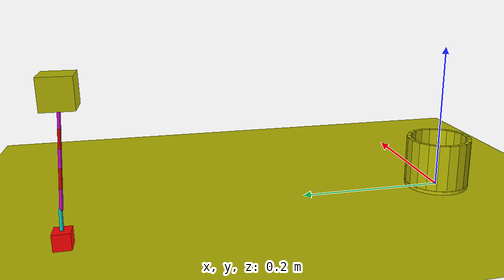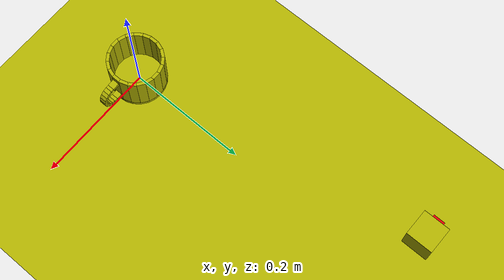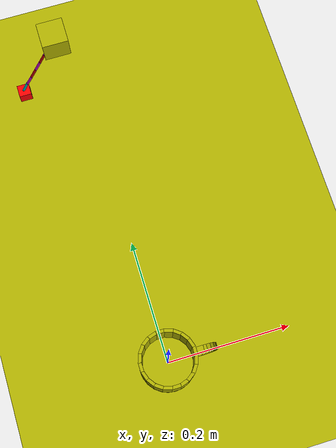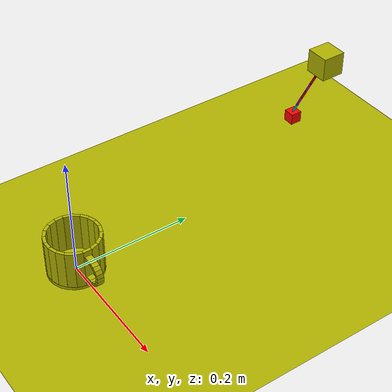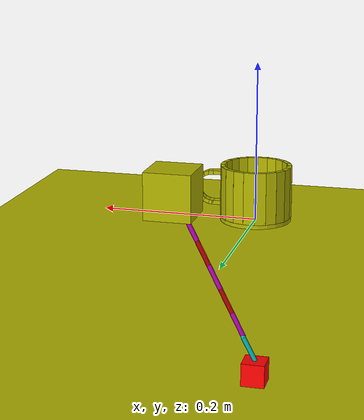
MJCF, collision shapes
<mujoco model="inverted pendulum">
	<compiler inertiafromgeom="true"/>
	<asset>
		<mesh file="mug" scale=".01 .01 .01"/>
	</asset>
	<default>
		<joint armature="0" damping="0.05" limited="false"/>
		<geom contype="3" friction="0.1 0.1 0.1" rgba="0.7 0.7 0 1"/>
		<tendon/>
		<motor ctrlrange="-3 3"/>
		<default class="collision">
      <geom type="box" group="3"/>
      <default class="cup">
        <geom size="0.0026 0.00704 0.033"/>
      </default>
      <default class="handle">
        <geom size="0.0025 0.00328 0.0055"/>
      </default>
    </default>
	</default>
	<option gravity="0 0 -9.81" integrator="RK4" timestep="0.01"/>
	<size nstack="3000"/>
	<worldbody>
		<geom name="ground" type="plane" pos="0 0 0" size="1 1 0.1" />

		<body name="mug">
		  <freejoint/>
		  <geom type="mesh" mesh="mug" euler="90 0 0" group="1" contype="0" conaffinity="0"/>
		  <geom class="cup" pos="0.0418 0 0.038" euler="0 0 0"/>
		  <geom class="cup" pos="0.0398 0.0129 0.038" euler="0 0 18"/>
		  <geom class="cup" pos="0.0339 0.0246 0.038" euler="0 0 36"/>
		  <geom class="cup" pos="0.0246 0.0339 0.038" euler="0 0 54"/>
		  <geom class="cup" pos="0.0129 0.0398 0.038" euler="0 0 72"/>
		  <geom class="cup" pos="0 0.0418 0.038" euler="0 0 90"/>
		  <geom class="cup" pos="-0.0129 0.0398 0.038" euler="0 0 108"/>
		  <geom class="cup" pos="-0.0246 0.0339 0.038" euler="0 0 126"/>
		  <geom class="cup" pos="-0.0339 0.0246 0.038" euler="0 0 144"/>
		  <geom class="cup" pos="-0.0398 0.0129 0.038" euler="0 0 162"/>
		  <geom class="cup" pos="-0.0418 0 0.038" euler="0 0 180"/>
		  <geom class="cup" pos="-0.0398 -0.0129 0.038" euler="0 0 198"/>
		  <geom class="cup" pos="-0.0339 -0.0246 0.038" euler="0 0 216"/>
		  <geom class="cup" pos="-0.0246 -0.0339 0.038" euler="0 0 234"/>
		  <geom class="cup" pos="-0.0129 -0.0398 0.038" euler="0 0 252"/>
		  <geom class="cup" pos="0 -0.0418 0.038" euler="0 0 270"/>
		  <geom class="cup" pos="0.0129 -0.0398 0.038" euler="0 0 288"/>
		  <geom class="cup" pos="0.0246 -0.0339 0.038" euler="0 0 306"/>
		  <geom class="cup" pos="0.0339 -0.0246 0.038" euler="0 0 324"/>
		  <geom class="cup" pos="0.0398 -0.0129 0.038" euler="0 0 342"/>
		  <geom class="cup" type="cylinder" size="0.045 0.0026" pos="0 0 0.0026"/>
		  <body name="handle" pos="0.056 0 0.0395" euler="90 0 0">
			<geom class="handle" pos="0.0193 0 0" euler="0 0 0"/>
			<geom class="handle" pos="0.0184 0.00568 0" euler="0 0 17.1"/>
			<geom class="handle" pos="0.0159 0.0108 0" euler="0 0 34.3"/>
			<geom class="handle" pos="0.012 0.0151 0" euler="0 0 51.4"/>
			<geom class="handle" pos="0.00703 0.0179 0" euler="0 0 68.6"/>
			<geom class="handle" pos="0.00144 0.0192 0" euler="0 0 85.7"/>
			<geom class="handle" pos="0.00144 -0.0192 0" euler="0 0 274"/>
			<geom class="handle" pos="0.00703 -0.0179 0" euler="0 0 291"/>
			<geom class="handle" pos="0.012 -0.0151 0" euler="0 0 309"/>
			<geom class="handle" pos="0.0159 -0.0108 0" euler="0 0 326"/>
			<geom class="handle" pos="0.0184 -0.00568 0" euler="0 0 343"/>
			<geom class="collision" size="0.007 0.0025 0.0055" pos="-0.007 -0.0195 0"/>
			<geom class="collision" size="0.007 0.0025 0.0055" pos="-0.007 0.0195 0"/>
		  </body>
		</body>

		<body name="box" pos="-0.1 0.5 0.02" >
			<joint axis="0 1 0"  name="red_box_joint" pos="0 0 0" range="-100 100" type="free"/>
            <inertial pos="0 0 0" mass="0.03" diaginertia="0.002 0.002 0.002" />
			<geom name="red_box" pos="0 0 0" quat="0.707 0.707 0.707 0.707" size="0.01 0.01 0.01" rgba="1 0 0 1" type="box"/>
			<body name="pole1" pos="0 0 0.01">
				<joint name="ball1" pos="0 0 0" type="ball" limited="false"/>
                <inertial pos="0 0 0" mass="0.002" diaginertia="0.0001 0.0001 0.0001" />
				<geom fromto="0 0 0 0.01 0.001 0.02" name="cpole1" rgba="0 0.7 0.7 1" size="0.002 0.1" type="capsule"/>
				<body name="pole2" pos="0.01 0 0.02">
					<joint name="ball2" type="ball" pos="0 0 0" />
                    <inertial pos="0 0 0" mass="0.002" diaginertia="0.0001 0.0001 0.0001" />
					<geom name="cpole2" type="capsule" fromto="0 0 0 0.01 0 0.02" size="0.002 0.1" rgba="0.7 0 0.7 1"/>
					<body name="pole3" pos="0.01 0 0.02">
						<joint name="ball3" type="ball" pos="0 0 0" />
                        <inertial pos="0 0 0" mass="0.002" diaginertia="0.0001 0.0001 0.0001" />
						<geom name="cpole3" type="capsule" fromto="0 0 0 0.01 0 0.02" size="0.002 0.01" rgba="0.7 0 0 1"/>
						<body name="pole4" pos="0.01 0 0.02">
							<joint name="ball4" type="ball" pos="0 0 0" />
                            <inertial pos="0 0 0" mass="0.002" diaginertia="0.0001 0.0001 0.0001" />
							<geom name="cpole4" type="capsule" fromto="0 0 0 0.01 0 0.02" size="0.002 0.01" rgba="0.7 0 0.7 1"/>
							<body name="pole5" pos="0.01 0 0.02">
								<joint name="ball5" type="ball" pos="0 0 0" />
                                <inertial pos="0 0 0" mass="0.002" diaginertia="0.0001 0.0001 0.0001" />
								<geom name="cpole5" type="capsule" fromto="0 0 0 0.01 0 0.02" size="0.002 0.01" rgba="0.7 0 0 1"/>
								<body name="pole6" pos="0.01 0 0.02">
                                    <joint name="ball6" type="ball" pos="0 0 0" />
                                    <inertial pos="0 0 0" mass="0.002" diaginertia="0.0001 0.0001 0.0001" />
                                    <geom name="cpole6" type="capsule" fromto="0 0 0 0.01 0 0.02" size="0.002 0.01" rgba="0.7 0 0.7 1"/>
                                    <body name="pole7" pos="0.01 0 0.02">
                                        <joint name="ball7" type="ball" pos="0 0 0" />
                                        <inertial pos="0 0 0" mass="0.002" diaginertia="0.0001 0.0001 0.0001" />
                                        <geom name="cpole7" type="capsule" fromto="0 0 0 0.01 0 0.02" size="0.002 0.01" rgba="0.7 0 0 1"/>
                                        <body name="tea_bag_body" pos="0.01 0 0.02">
                                            <joint name="tea_bag_joint" type="ball" pos="0 0 0" />
                                            <inertial pos="0 0 0" mass="0.05" diaginertia="0.002 0.002 0.002" />
                                            <geom name="tea_bag" type="box" size="0.02 0.02 0.02" rgba="0.7 0.7 0 1" />
                                        </body>
                                    </body>
                                </body>
							</body>
						</body>
					</body>
				</body>
			</body>
		</body>
	</worldbody>
	<actuator>

	</actuator>
</mujoco>
